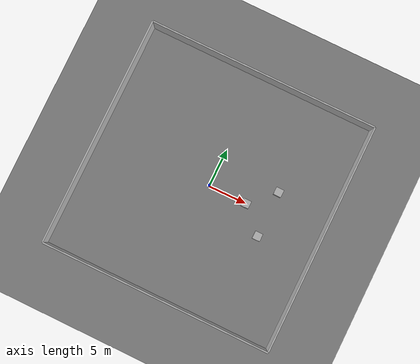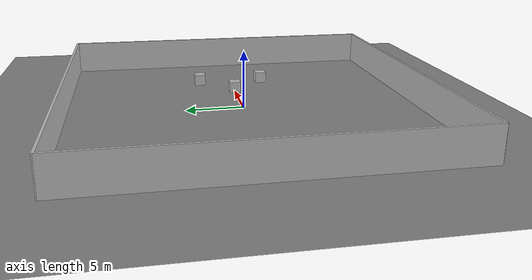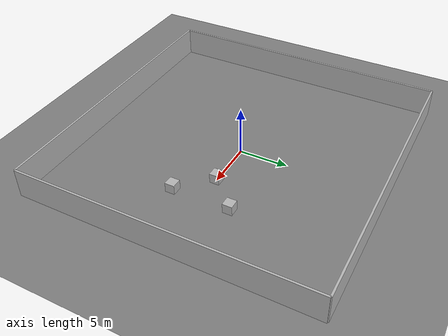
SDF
<?xml version="1.0"?>
<sdf version="1.8">
  <world name="bounded_obstacle_world">
    <!-- Use same physics as before -->
    <physics name="default_physics" type="ode">
      <max_step_size>0.002</max_step_size>
      <real_time_factor>1.0</real_time_factor>
      <real_time_update_rate>500</real_time_update_rate>
    </physics>
    <plugin filename="gz-sim-physics-system" name="gz::sim::systems::Physics" />
    <plugin filename="gz-sim-sensors-system" name="gz::sim::systems::Sensors"><render_engine>ogre2</render_engine></plugin>
    <plugin filename="gz-sim-user-commands-system" name="gz::sim::systems::UserCommands" />
    <plugin filename="gz-sim-scene-broadcaster-system" name="gz::sim::systems::SceneBroadcaster" />

    <!-- Sunlight and Ground Plane -->
    <light type="directional" name="sun"><pose>0 0 10 0 0 0</pose></light>
    <model name="ground_plane"><static>true</static><link name="link"><collision name="collision"><geometry><plane><normal>0 0 1</normal><size>100 100</size></plane></geometry></collision><visual name="visual"><geometry><plane><normal>0 0 1</normal><size>100 100</size></plane></geometry><material><ambient>0.3 0.3 0.3 1</ambient><diffuse>0.5 0.5 0.5 1</diffuse></material></visual></link></model>

    <!-- === OUTER WALLS === -->
    <model name="wall_north"><static>true</static><pose>0 15 1.5 0 0 0</pose><link name="link"><collision name="collision"><geometry><box><size>30 0.2 3</size></box></geometry></collision><visual name="visual"><geometry><box><size>30 0.2 3</size></box></geometry></visual></link></model>
    <model name="wall_south"><static>true</static><pose>0 -15 1.5 0 0 0</pose><link name="link"><collision name="collision"><geometry><box><size>30 0.2 3</size></box></geometry></collision><visual name="visual"><geometry><box><size>30 0.2 3</size></box></geometry></visual></link></model>
    <model name="wall_east"><static>true</static><pose>15 0 1.5 0 0 1.57</pose><link name="link"><collision name="collision"><geometry><box><size>30 0.2 3</size></box></geometry></collision><visual name="visual"><geometry><box><size>30 0.2 3</size></box></geometry></visual></link></model>
    <model name="wall_west"><static>true</static><pose>-15 0 1.5 0 0 1.57</pose><link name="link"><collision name="collision"><geometry><box><size>30 0.2 3</size></box></geometry></collision><visual name="visual"><geometry><box><size>30 0.2 3</size></box></geometry></visual></link></model>

    <!-- === TEST OBSTACLES (To be deleted) === -->
    <model name="box1"><static>true</static><pose>5 0 0.5 0 0 0</pose><link name="link"><collision name="collision"><geometry><box><size>1 1 1</size></box></geometry></collision><visual name="visual"><geometry><box><size>1 1 1</size></box></geometry></visual></link></model>
    <model name="box2"><static>true</static><pose>8 3 0.5 0 0 0</pose><link name="link"><collision name="collision"><geometry><box><size>1 1 1</size></box></geometry></collision><visual name="visual"><geometry><box><size>1 1 1</size></box></geometry></visual></link></model>
    <model name="box3"><static>true</static><pose>8 -3 0.5 0 0 0</pose><link name="link"><collision name="collision"><geometry><box><size>1 1 1</size></box></geometry></collision><visual name="visual"><geometry><box><size>1 1 1</size></box></geometry></visual></link></model>
  </world>
</sdf>
